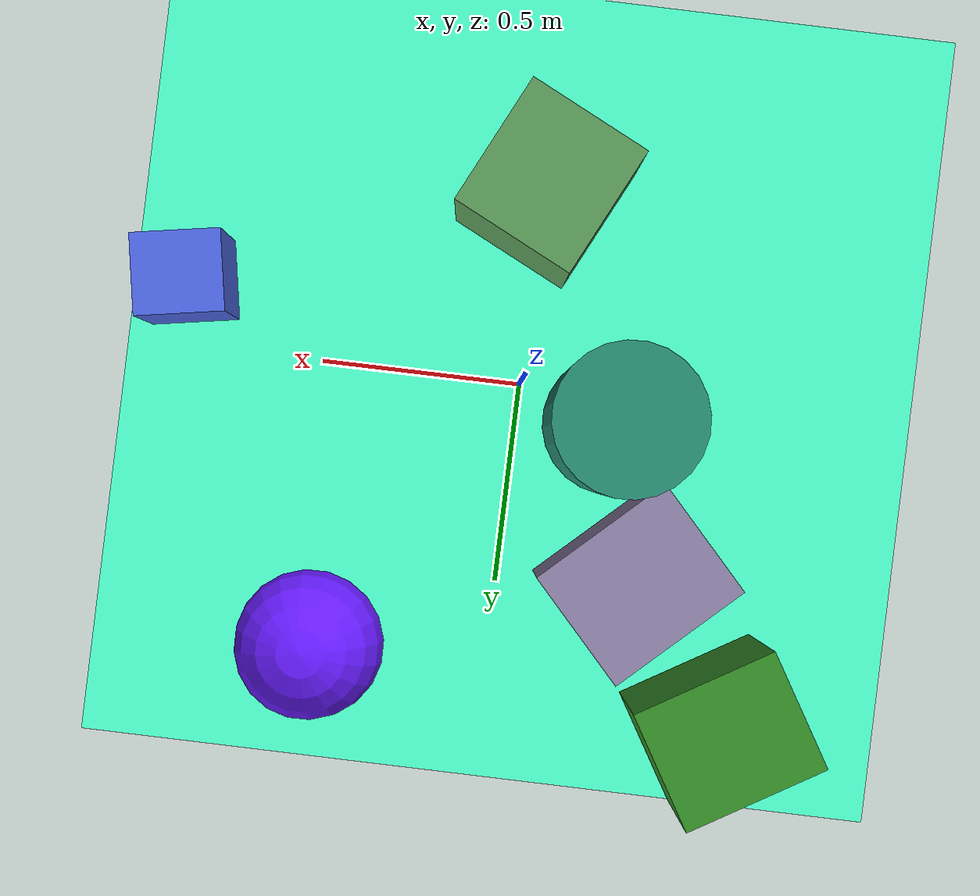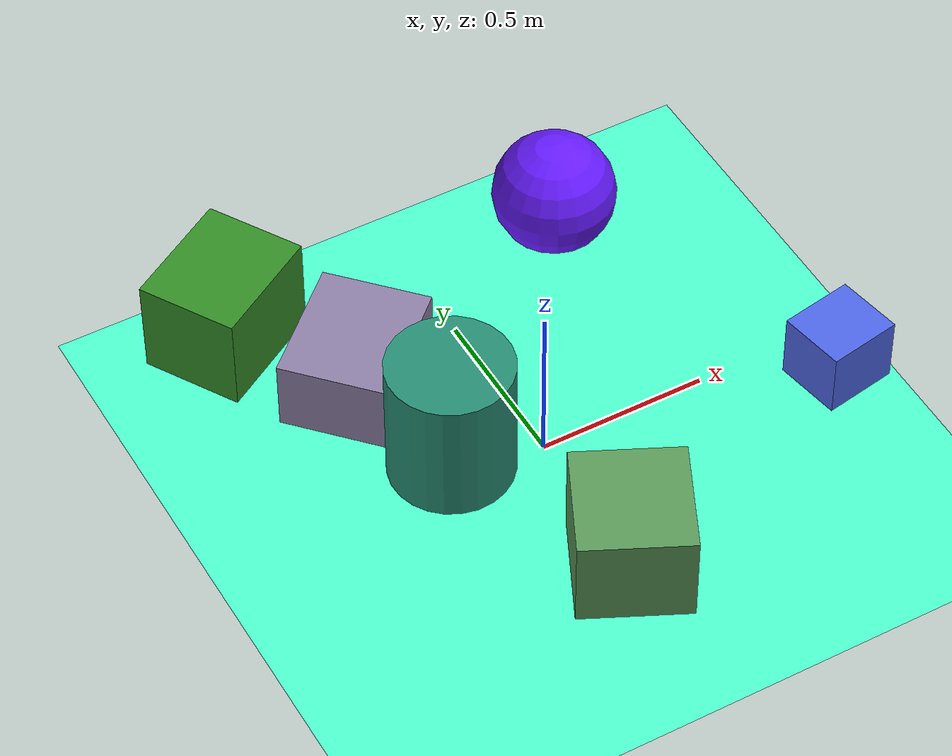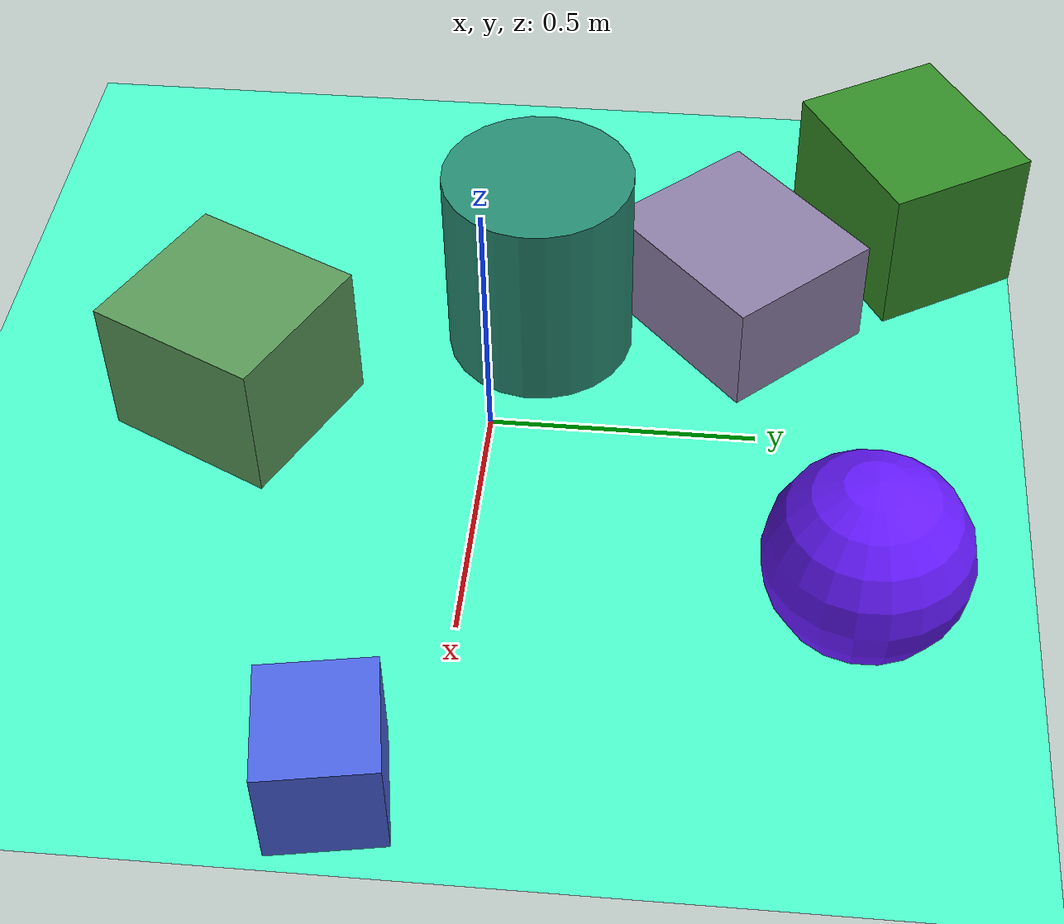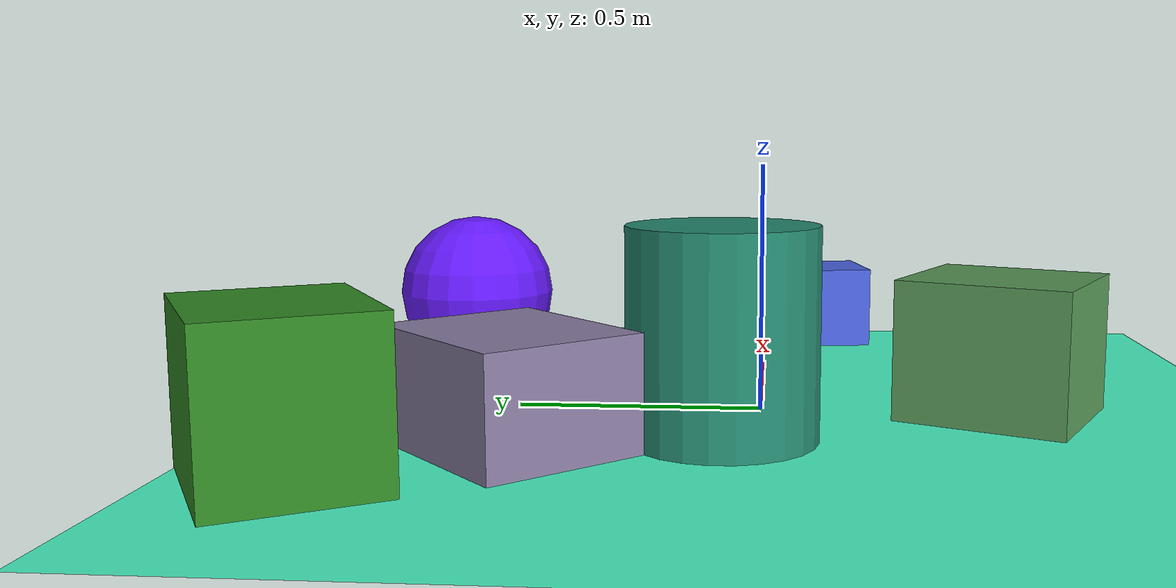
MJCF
<mujoco>
   <asset>
<texture type="skybox" builtin="gradient" rgb1="0.2 0.1 0.9" rgb2="0.1 0.8 0.6" width="256" height="256"/>
<texture name="flat_0" builtin="flat" rgb1="0.4 0.1 1.0" rgb2="0.4 0.1 1.0"  width="200" height="200"/>
<texture name="gradient_1" builtin="gradient" rgb1="0.2 0.3 0.0" rgb2="0.2 0.8 0.3" width="200" height="200"/>
<texture name="flat_2" builtin="flat" rgb1="0.3 0.4 0.9" rgb2="0.3 0.4 0.9"  width="200" height="200"/>
<texture name="checker_3" builtin="checker" rgb1="0.7 0.6 0.3" rgb2="0.4 0.4 1.0" width="200" height="200"/>
<texture name="gradient_4" builtin="gradient" rgb1="0.2 0.4 0.3" rgb2="0.1 0.7 0.6" width="200" height="200"/>
<texture name="checker_5" builtin="checker" rgb1="0.3 0.7 0.3" rgb2="0.4 0.5 0.4" width="200" height="200"/><material name="flat_0_mat" reflectance="0" texture="flat_0" texuniform="true"/>
<material name="gradient_1_mat" reflectance="0" texture="gradient_1" texuniform="true"/>
<material name="flat_2_mat" reflectance="0" texture="flat_2" texuniform="true"/>
<material name="checker_3_mat" reflectance="0" texrepeat="5 5" texture="checker_3" texuniform="false" />
<material name="gradient_4_mat" reflectance="0" texture="gradient_4" texuniform="true"/>
<material name="checker_5_mat" reflectance="0" texrepeat="8 8" texture="checker_5" texuniform="false" />
   </asset>

   <worldbody>
      <light diffuse=".9 .9 .9" pos="0 0 3" dir="0 0 -1"/>
     <geom type="plane" size="1 1 0.1" rgba="0.3 1.0 0.8 1"/>
<geom type="sphere" pos="0.43 0.69 0.18" size="0.18 0.18 0.18" material="flat_0_mat" euler="0 0 82" />
<geom type="box" pos="-0.58 0.78 0.15" size="0.18 0.15 0.15" material="gradient_1_mat" euler="0 0 31" />
<geom type="box" pos="0.85 -0.16 0.1" size="0.11 0.1 0.1" material="flat_2_mat" euler="0 0 10" />
<geom type="box" pos="-0.34 0.45 0.11" size="0.19 0.16 0.11" material="checker_3_mat" euler="0 0 43" />
<geom type="cylinder" pos="-0.25 0.07 0.2" size="0.18 0.2 0.2" material="gradient_4_mat" euler="0 0 70" />
<geom type="box" pos="-0.01 -0.48 0.14" size="0.17 0.16 0.14" material="checker_5_mat" euler="0 0 64" /><camera euler="60 0 180" fovy="60" name="camera1" pos="-0.2 -1.5 1"></camera>   </worldbody>
</mujoco>
